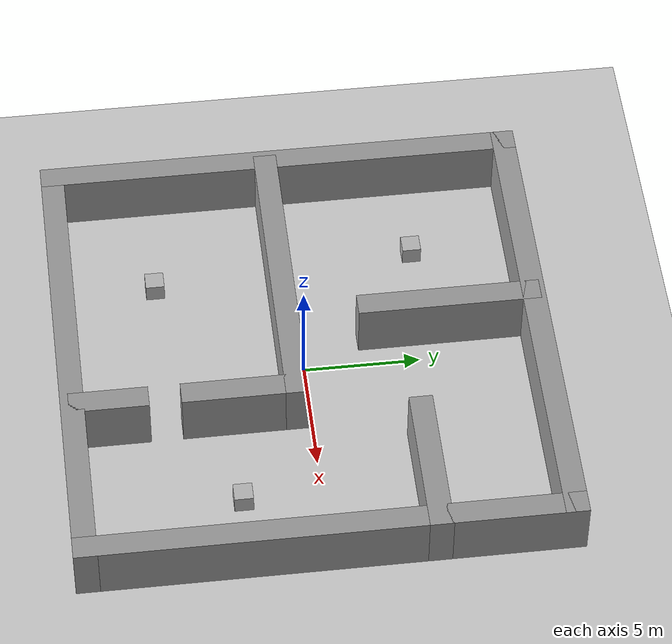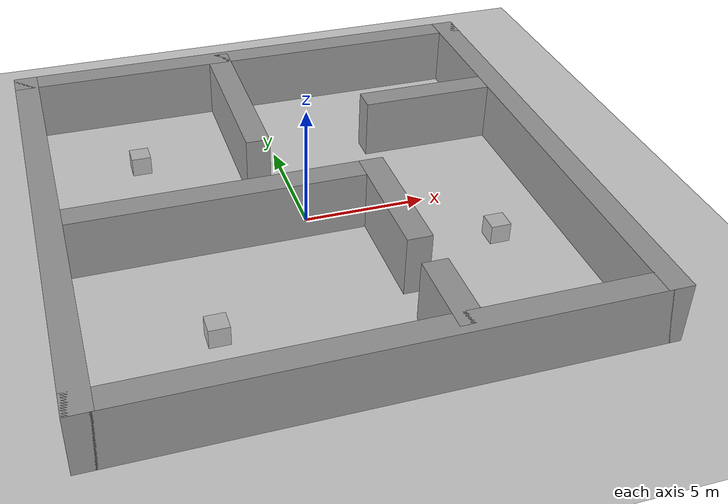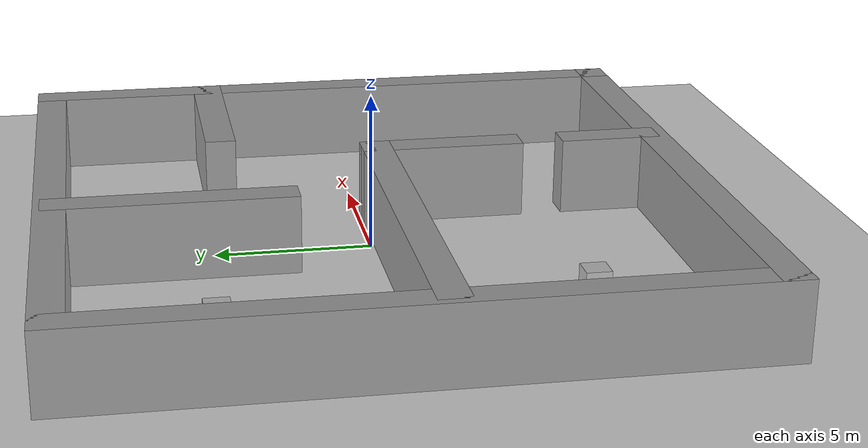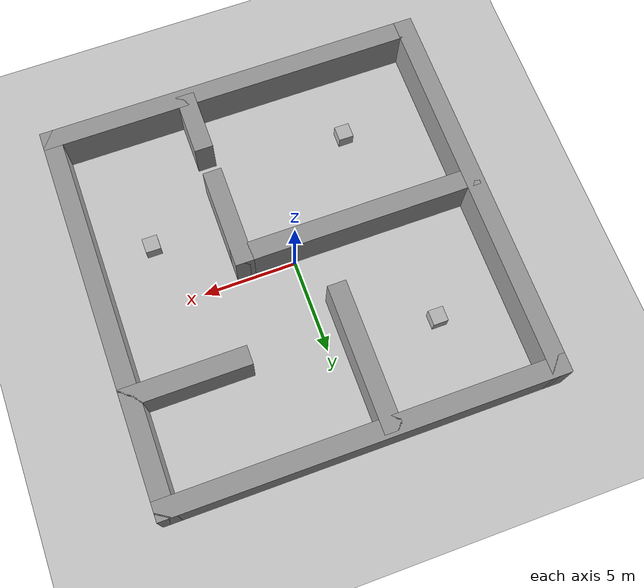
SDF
<sdf version="1.7">
 <world name="default">
  <light name="sun" type="directional">
   <pose>0 0 10 0 -0 0</pose>
   <diffuse>0.8 0.8 0.8 1</diffuse>
   <specular>0.2 0.2 0.2 1</specular>
   <attenuation>
    <range>1000</range>
    <constant>0.9</constant>
    <linear>0.01</linear>
    <quadratic>0.001</quadratic>
   </attenuation>
   <direction>-0.5 0.1 -0.9</direction>
   <spot><inner_angle>0</inner_angle><outer_angle>0</outer_angle><falloff>0</falloff></spot>
  </light>
  <model name="ground_plane">
   <static>1</static>
   <link name="link">
    <collision name="collision">
     <geometry><plane><normal>0 0 1</normal><size>100 100</size></plane></geometry>
     <surface><friction><ode><mu>100</mu><mu2>50</mu2></ode></friction></surface>
    </collision>
    <visual name="visual">
     <cast_shadows>0</cast_shadows>
     <geometry><plane><normal>0 0 1</normal><size>100 100</size></plane></geometry>
     <material>
      <script><uri>file://media/materials/scripts/gazebo.material</uri><name>Gazebo/Grey</name></script>
     </material>
    </visual>
   </link>
  </model>
  <gravity>0 0 -9.8</gravity>
  <magnetic_field>6e-06 2.3e-05 -4.2e-05</magnetic_field>
  <atmosphere type="adiabatic"/>
  <physics type="ode">
   <max_step_size>0.001</max_step_size>
   <real_time_factor>1</real_time_factor>
   <real_time_update_rate>1000</real_time_update_rate>
  </physics>
  <scene><ambient>0.4 0.4 0.4 1</ambient><background>0.7 0.7 0.7 1</background><shadows>1</shadows></scene>
  <spherical_coordinates>
   <surface_model>EARTH_WGS84</surface_model>
   <latitude_deg>0</latitude_deg>
   <longitude_deg>0</longitude_deg>
   <elevation>0</elevation>
   <heading_deg>0</heading_deg>
  </spherical_coordinates>
  <model name="demo02">
   <pose>0.000951 0 0 0 -0 0</pose>
   <link name="Wall_0">
    <collision name="Wall_0_Collision">
     <geometry><box><size>21 1 2.5</size></box></geometry>
     <pose>0 0 1.25 0 -0 0</pose>
    </collision>
    <visual name="Wall_0_Visual">
     <pose>0 0 1.25 0 -0 0</pose>
     <geometry><box><size>21 1 2.5</size></box></geometry>
     <material>
      <script><uri>file://media/materials/scripts/gazebo.material</uri><name>Gazebo/Grey</name></script>
      <ambient>1 1 1 1</ambient>
     </material>
     <meta><layer>0</layer></meta>
    </visual>
    <pose>-10.001 0 0 0 -0 1.5708</pose>
   </link>
   <link name="Wall_18">
    <collision name="Wall_18_Collision">
     <geometry><box><size>5.35 1 2.5</size></box></geometry>
     <pose>0 0 1.25 0 -0 0</pose>
    </collision>
    <visual name="Wall_18_Visual">
     <pose>0 0 1.25 0 -0 0</pose>
     <geometry><box><size>5.35 1 2.5</size></box></geometry>
     <material>
      <script><uri>file://media/materials/scripts/gazebo.material</uri><name>Gazebo/Grey</name></script>
      <ambient>1 1 1 1</ambient>
     </material>
     <meta><layer>0</layer></meta>
    </visual>
    <pose>2.61705 -2.776 0 0 -0 -1.5708</pose>
   </link>
   <link name="Wall_20">
    <collision name="Wall_20_Collision">
     <geometry><box><size>3.35 1 2.5</size></box></geometry>
     <pose>0 0 1.25 0 -0 0</pose>
    </collision>
    <visual name="Wall_20_Visual">
     <pose>0 0 1.25 0 -0 0</pose>
     <geometry><box><size>3.35 1 2.5</size></box></geometry>
     <material>
      <script><uri>file://media/materials/scripts/gazebo.material</uri><name>Gazebo/Grey</name></script>
      <ambient>1 1 1 1</ambient>
     </material>
     <meta><layer>0</layer></meta>
    </visual>
    <pose>2.61705 -8.476 0 0 -0 -1.5708</pose>
   </link>
   <link name="Wall_22">
    <collision name="Wall_22_Collision">
     <geometry><box><size>7.84992 1 2.5</size></box></geometry>
     <pose>0 0 1.25 0 -0 0</pose>
    </collision>
    <visual name="Wall_22_Visual">
     <pose>0 0 1.25 0 -0 0</pose>
     <geometry><box><size>7.84992 1 2.5</size></box></geometry>
     <material>
      <script><uri>file://media/materials/scripts/gazebo.material</uri><name>Gazebo/Grey</name></script>
      <ambient>1 1 1 1</ambient>
     </material>
     <meta><layer>0</layer></meta>
    </visual>
    <pose>-1.31995 6.37 0 0 -0 -1.5708</pose>
   </link>
   <link name="Wall_25">
    <collision name="Wall_25_Collision">
     <geometry><box><size>6.5998 1 2.5</size></box></geometry>
     <pose>0 0 1.25 0 -0 0</pose>
    </collision>
    <visual name="Wall_25_Visual">
     <pose>0 0 1.25 0 -0 0</pose>
     <geometry><box><size>6.5998 1 2.5</size></box></geometry>
     <material>
      <script><uri>file://media/materials/scripts/gazebo.material</uri><name>Gazebo/Grey</name></script>
      <ambient>1 1 1 1</ambient>
     </material>
     <meta><layer>0</layer></meta>
    </visual>
    <pose>7.20105 4.443 0 0 -0 3.14159</pose>
   </link>
   <link name="Wall_3">
    <collision name="Wall_3_Collision">
     <geometry><box><size>21 1 2.5</size></box></geometry>
     <pose>0 0 1.25 0 -0 0</pose>
    </collision>
    <visual name="Wall_3_Visual">
     <pose>0 0 1.25 0 -0 0</pose>
     <geometry><box><size>21 1 2.5</size></box></geometry>
     <material>
      <script><uri>file://media/materials/scripts/gazebo.material</uri><name>Gazebo/Grey</name></script>
      <ambient>1 1 1 1</ambient>
     </material>
     <meta><layer>0</layer></meta>
    </visual>
    <pose>-0.000951 -10 0 0 -0 0</pose>
   </link>
   <link name="Wall_5">
    <collision name="Wall_5_Collision">
     <geometry><box><size>21 1 2.5</size></box></geometry>
     <pose>0 0 1.25 0 -0 0</pose>
    </collision>
    <visual name="Wall_5_Visual">
     <pose>0 0 1.25 0 -0 0</pose>
     <geometry><box><size>21 1 2.5</size></box></geometry>
     <material>
      <script><uri>file://media/materials/scripts/gazebo.material</uri><name>Gazebo/Grey</name></script>
      <ambient>1 1 1 1</ambient>
     </material>
     <meta><layer>0</layer></meta>
    </visual>
    <pose>-0.000951 10 0 0 -0 0</pose>
   </link>
   <link name="Wall_7">
    <collision name="Wall_7_Collision">
     <geometry><box><size>21 1 2.5</size></box></geometry>
     <pose>0 0 1.25 0 -0 0</pose>
    </collision>
    <visual name="Wall_7_Visual">
     <pose>0 0 1.25 0 -0 0</pose>
     <geometry><box><size>21 1 2.5</size></box></geometry>
     <material>
      <script><uri>file://media/materials/scripts/gazebo.material</uri><name>Gazebo/Grey</name></script>
      <ambient>1 1 1 1</ambient>
     </material>
     <meta><layer>0</layer></meta>
    </visual>
    <pose>9.99905 0 0 0 -0 -1.5708</pose>
   </link>
   <link name="Wall_9">
    <collision name="Wall_9_Collision">
     <geometry><box><size>13.3503 1 2.5</size></box></geometry>
     <pose>0 0 1.25 0 -0 0</pose>
    </collision>
    <visual name="Wall_9_Visual">
     <pose>0 0 1.25 0 -0 0</pose>
     <geometry><box><size>13.3503 1 2.5</size></box></geometry>
     <material>
      <script><uri>file://media/materials/scripts/gazebo.material</uri><name>Gazebo/Grey</name></script>
      <ambient>1 1 1 1</ambient>
     </material>
     <meta><layer>0</layer></meta>
    </visual>
    <pose>-3.55795 -0.601 0 0 -0 0</pose>
   </link>
   <static>1</static>
  </model>
  <model name="number1">
   <pose>-4.96407 -5.97377 0.5 0 -0 0</pose>
   <static>1</static>
   <link name="link">
    <collision name="collision"><geometry><box><size>1 1 1</size></box></geometry></collision>
    <visual name="visual">
     <geometry><mesh><uri>model://number1/meshes/number.dae</uri></mesh></geometry>
     <material>
      <script>
       <uri>model://number1/materials/scripts</uri>
       <uri>model://number1/materials/textures</uri>
       <name>Number/One</name>
      </script>
     </material>
    </visual>
   </link>
  </model>
  <model name="number2">
   <pose>-5.82023 5.35792 0.5 0 -0 0</pose>
   <static>1</static>
   <link name="link">
    <collision name="collision"><geometry><box><size>1 1 1</size></box></geometry></collision>
    <visual name="visual">
     <geometry><mesh><uri>model://number1/meshes/number.dae</uri></mesh></geometry>
     <material>
      <script>
       <uri>model://number2/materials/scripts</uri>
       <uri>model://number2/materials/textures</uri>
       <name>Number/Two</name>
      </script>
     </material>
    </visual>
   </link>
  </model>
  <model name="number3">
   <pose>6.78204 -3.29256 0.5 0 -0 0</pose>
   <static>1</static>
   <link name="link">
    <collision name="collision"><geometry><box><size>1 1 1</size></box></geometry></collision>
    <visual name="visual">
     <geometry><mesh><uri>model://number1/meshes/number.dae</uri></mesh></geometry>
     <material>
      <script>
       <uri>model://number3/materials/scripts</uri>
       <uri>model://number3/materials/textures</uri>
       <name>Number/Three</name>
      </script>
     </material>
    </visual>
   </link>
  </model>
 </world>
</sdf>
